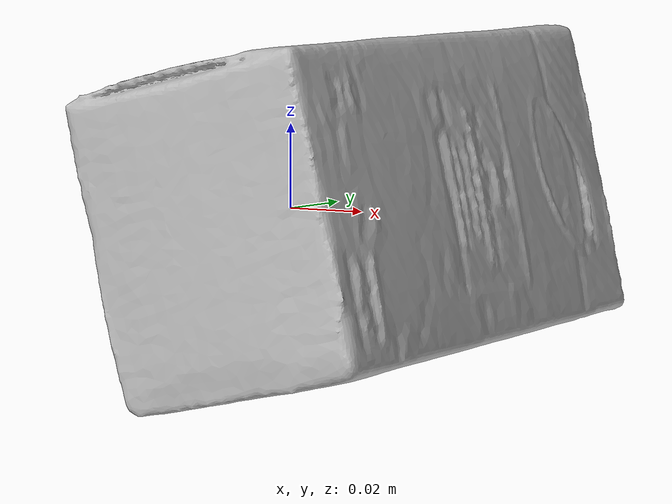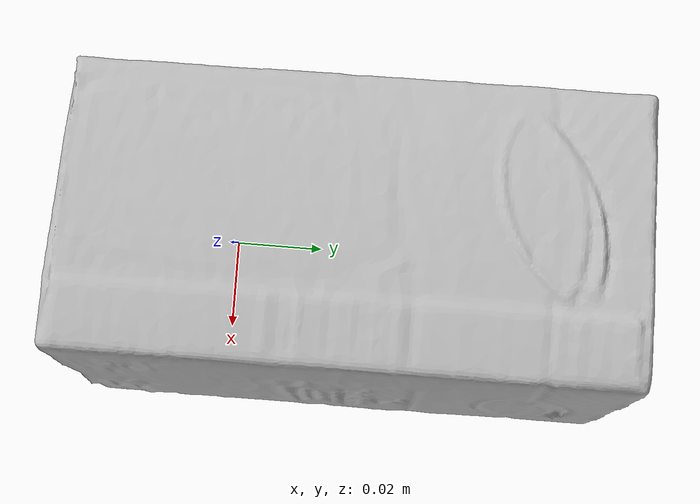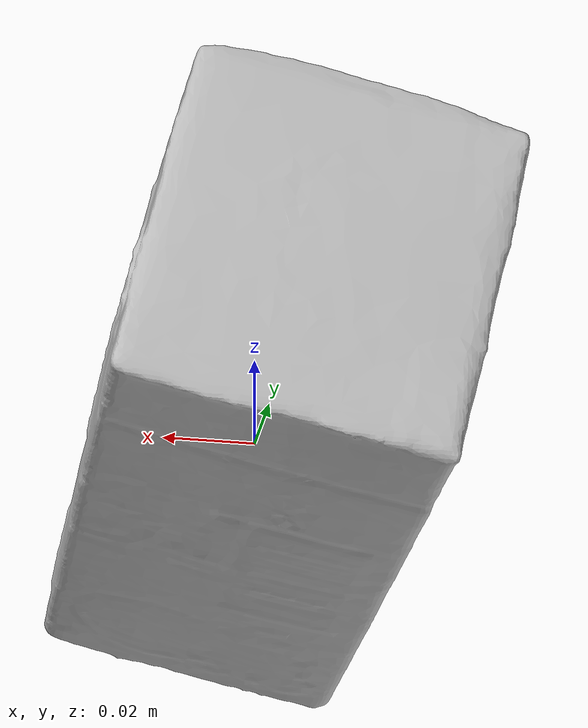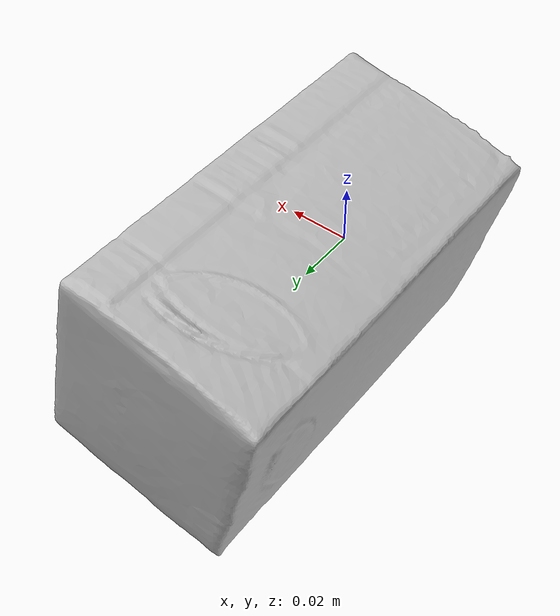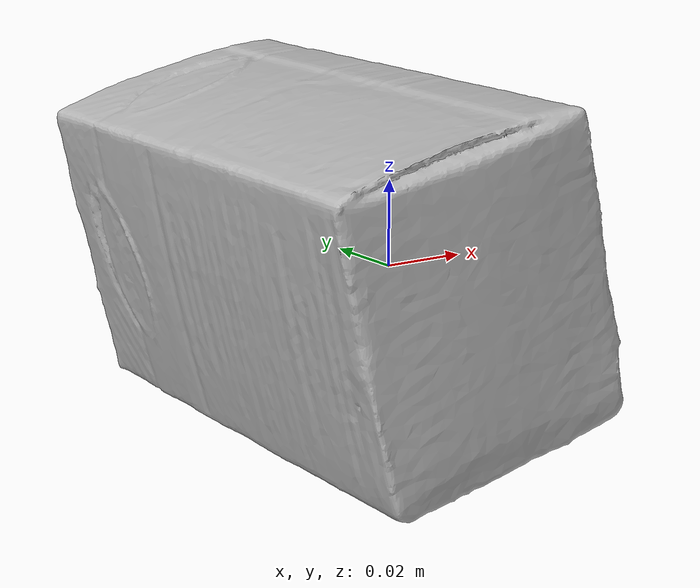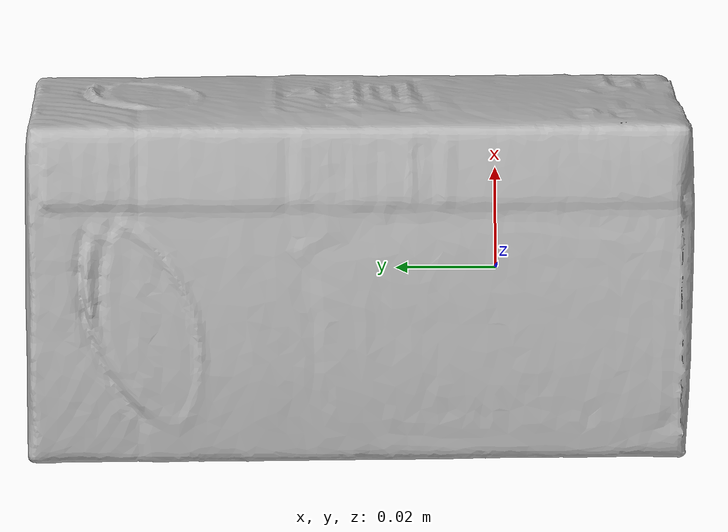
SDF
<?xml version='1.0'?>
<sdf version="1.4">
  <model name="OrgHerbTea">
    <static>false</static>
    <link name="link">
      <inertial>
        <pose>0.0012932030514677085 0.02808677848128958 -0.0021183130350357934 1.5478428465760858 0.24407320405222105 -3.136306650726892</pose>
        <mass>0.06789246626355942</mass>
        <inertia>
          <ixx>0.00012817876433207631</ixx>
          <ixy>-1.1406236433868942e-20</ixy>
          <ixz>-1.4899956619816574e-21</ixz>
          <iyy>0.0001210710924065348</iyy>
          <iyz>2.003164804576339e-21</iyz>
          <izz>5.848772357387166e-05</izz>
        </inertia>
      </inertial>
      <collision name="collision">
        <geometry>
          <mesh>
            <!-- Use a downsampled mesh for collisions -->
            <uri>model:///OrgHerbTea/OrgHerbTea_250_collision.obj</uri>
	        </mesh>
        </geometry>
        <surface>
      </surface>
      </collision>
      <visual name="visual">
        <geometry>
          <mesh>
            <uri>model:///OrgHerbTea/OrgHerbTea_25k_tex.obj</uri>
	        </mesh>
        </geometry>
        <material>
          <script>
            <uri>model:///OrgHerbTea/OrgHerbTea.material</uri>
            <name>OrgHerbTea</name>
          </script>
        </material>
      </visual>
    </link>
  </model>
</sdf>
